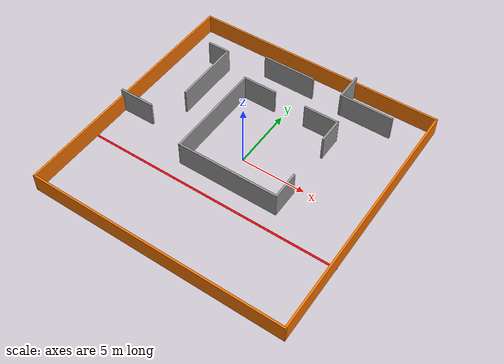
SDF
<?xml version='1.0'?>
<sdf version='1.7'>
  <model name='SAFMC_WALL_similar'>
    <pose>-0.072 -0.075 0 0 -0 0</pose>
    <link name='Wall_0'>
      <collision name='Wall_0_Collision'>
        <geometry>
          <box>
            <size>20 0.15 1.5</size>
          </box>
        </geometry>
        <pose>0 0 0.75 0 -0 0</pose>
      </collision>
      <visual name='Wall_0_Visual'>
        <pose>0 0 0.75 0 -0 0</pose>
        <geometry>
          <box>
            <size>20 0.15 1.5</size>
          </box>
        </geometry>
        <material>
          <script>
            <uri>file://media/materials/scripts/gazebo.material</uri>
            <name>Gazebo/Grey</name>
          </script>
          <ambient>0.996078 0.47451 0.0196078 1</ambient>
        </material>
        <meta>
          <layer>0</layer>
        </meta>
      </visual>
      <pose>-0.003 -9.925 0 0 -0 0</pose>
    </link>
    <link name='Wall_10'>
      <collision name='Wall_10_Collision'>
        <geometry>
          <box>
            <size>2.75 0.15 2</size>
          </box>
        </geometry>
        <pose>0 0 1 0 -0 0</pose>
      </collision>
      <visual name='Wall_10_Visual'>
        <pose>0 0 1 0 -0 0</pose>
        <geometry>
          <box>
            <size>2.75 0.15 2</size>
          </box>
        </geometry>
        <material>
          <script>
            <uri>file://media/materials/scripts/gazebo.material</uri>
            <name>Gazebo/Grey</name>
          </script>
          <ambient>0 0 0 1</ambient>
        </material>
        <meta>
          <layer>0</layer>
        </meta>
      </visual>
      <pose>-8.642 -0.751 0 0 -0 0</pose>
    </link>
    <link name='Wall_12'>
      <collision name='Wall_12_Collision'>
        <geometry>
          <box>
            <size>1.75 0.15 2</size>
          </box>
        </geometry>
        <pose>0 0 1 0 -0 0</pose>
      </collision>
      <visual name='Wall_12_Visual'>
        <pose>0 0 1 0 -0 0</pose>
        <geometry>
          <box>
            <size>1.75 0.15 2</size>
          </box>
        </geometry>
        <material>
          <script>
            <uri>file://media/materials/scripts/gazebo.material</uri>
            <name>Gazebo/Grey</name>
          </script>
          <ambient>0 0 0 1</ambient>
        </material>
        <meta>
          <layer>0</layer>
        </meta>
      </visual>
      <pose>-6.88992 6.92788 0 0 -0 0</pose>
    </link>
    <link name='Wall_13'>
      <collision name='Wall_13_Collision'>
        <geometry>
          <box>
            <size>5.40588 0.15 2</size>
          </box>
        </geometry>
        <pose>0 0 1 0 -0 0</pose>
      </collision>
      <visual name='Wall_13_Visual'>
        <pose>0 0 1 0 -0 0</pose>
        <geometry>
          <box>
            <size>5.40588 0.15 2</size>
          </box>
        </geometry>
        <material>
          <script>
            <uri>file://media/materials/scripts/gazebo.material</uri>
            <name>Gazebo/Grey</name>
          </script>
          <ambient>0 0 0 1</ambient>
        </material>
        <meta>
          <layer>0</layer>
        </meta>
      </visual>
      <pose>-6.05047 4.29994 0 0 -0 -1.5708</pose>
    </link>
    <link name='Wall_15'>
      <collision name='Wall_15_Collision'>
        <geometry>
          <box>
            <size>2.25 0.15 2</size>
          </box>
        </geometry>
        <pose>0 0 1 0 -0 0</pose>
      </collision>
      <visual name='Wall_15_Visual'>
        <pose>0 0 1 0 -0 0</pose>
        <geometry>
          <box>
            <size>2.25 0.15 2</size>
          </box>
        </geometry>
        <material>
          <script>
            <uri>file://media/materials/scripts/gazebo.material</uri>
            <name>Gazebo/Grey</name>
          </script>
          <ambient>0 0 0 1</ambient>
        </material>
        <meta>
          <layer>0</layer>
        </meta>
      </visual>
      <pose>3.3575 8.83 0 0 -0 -1.5708</pose>
    </link>
    <link name='Wall_18'>
      <collision name='Wall_18_Collision'>
        <geometry>
          <box>
            <size>4.198 0.15 2</size>
          </box>
        </geometry>
        <pose>0 0 1 0 -0 0</pose>
      </collision>
      <visual name='Wall_18_Visual'>
        <pose>0 0 1 0 -0 0</pose>
        <geometry>
          <box>
            <size>4.198 0.15 2</size>
          </box>
        </geometry>
        <material>
          <script>
            <uri>file://media/materials/scripts/gazebo.material</uri>
            <name>Gazebo/Grey</name>
          </script>
          <ambient>0 0 0 1</ambient>
        </material>
        <meta>
          <layer>0</layer>
        </meta>
      </visual>
      <pose>5.416 7.78 0 0 -0 0</pose>
    </link>
    <link name='Wall_2'>
      <collision name='Wall_2_Collision'>
        <geometry>
          <box>
            <size>20 0.15 1.5</size>
          </box>
        </geometry>
        <pose>0 0 0.75 0 -0 0</pose>
      </collision>
      <visual name='Wall_2_Visual'>
        <pose>0 0 0.75 0 -0 0</pose>
        <geometry>
          <box>
            <size>20 0.15 1.5</size>
          </box>
        </geometry>
        <material>
          <script>
            <uri>file://media/materials/scripts/gazebo.material</uri>
            <name>Gazebo/Grey</name>
          </script>
          <ambient>0.996078 0.47451 0.0196078 1</ambient>
        </material>
        <meta>
          <layer>0</layer>
        </meta>
      </visual>
      <pose>-9.928 -0 0 0 -0 1.5708</pose>
    </link>
    <link name='Wall_20'>
      <collision name='Wall_20_Collision'>
        <geometry>
          <box>
            <size>4.25 0.15 2</size>
          </box>
        </geometry>
        <pose>0 0 1 0 -0 0</pose>
      </collision>
      <visual name='Wall_20_Visual'>
        <pose>0 0 1 0 -0 0</pose>
        <geometry>
          <box>
            <size>4.25 0.15 2</size>
          </box>
        </geometry>
        <material>
          <script>
            <uri>file://media/materials/scripts/gazebo.material</uri>
            <name>Gazebo/Grey</name>
          </script>
          <ambient>0 0 0 1</ambient>
        </material>
        <meta>
          <layer>0</layer>
        </meta>
      </visual>
      <pose>-1.2353 8.03112 0 0 -0 0</pose>
    </link>
    <link name='Wall_22'>
      <collision name='Wall_22_Collision'>
        <geometry>
          <box>
            <size>8 0.15 2</size>
          </box>
        </geometry>
        <pose>0 0 1 0 -0 0</pose>
      </collision>
      <visual name='Wall_22_Visual'>
        <pose>0 0 1 0 -0 0</pose>
        <geometry>
          <box>
            <size>8 0.15 2</size>
          </box>
        </geometry>
        <material>
          <script>
            <uri>file://media/materials/scripts/gazebo.material</uri>
            <name>Gazebo/Grey</name>
          </script>
          <ambient>0 0 0 1</ambient>
        </material>
        <meta>
          <layer>0</layer>
        </meta>
      </visual>
      <pose>-3.36412 1.386 0 0 -0 -1.5708</pose>
    </link>
    <link name='Wall_24'>
      <collision name='Wall_24_Collision'>
        <geometry>
          <box>
            <size>8 0.15 2</size>
          </box>
        </geometry>
        <pose>0 0 1 0 -0 0</pose>
      </collision>
      <visual name='Wall_24_Visual'>
        <pose>0 0 1 0 -0 0</pose>
        <geometry>
          <box>
            <size>8 0.15 2</size>
          </box>
        </geometry>
        <material>
          <script>
            <uri>file://media/materials/scripts/gazebo.material</uri>
            <name>Gazebo/Grey</name>
          </script>
          <ambient>0 0 0 1</ambient>
        </material>
        <meta>
          <layer>0</layer>
        </meta>
      </visual>
      <pose>0.560883 -2.539 0 0 -0 0</pose>
    </link>
    <link name='Wall_26'>
      <collision name='Wall_26_Collision'>
        <geometry>
          <box>
            <size>2.25 0.15 2</size>
          </box>
        </geometry>
        <pose>0 0 1 0 -0 0</pose>
      </collision>
      <visual name='Wall_26_Visual'>
        <pose>0 0 1 0 -0 0</pose>
        <geometry>
          <box>
            <size>2.25 0.15 2</size>
          </box>
        </geometry>
        <material>
          <script>
            <uri>file://media/materials/scripts/gazebo.material</uri>
            <name>Gazebo/Grey</name>
          </script>
          <ambient>0 0 0 1</ambient>
        </material>
        <meta>
          <layer>0</layer>
        </meta>
      </visual>
      <pose>4.48588 -1.489 0 0 -0 1.5708</pose>
    </link>
    <link name='Wall_28'>
      <collision name='Wall_28_Collision'>
        <geometry>
          <box>
            <size>2.75 0.15 2</size>
          </box>
        </geometry>
        <pose>0 0 1 0 -0 0</pose>
      </collision>
      <visual name='Wall_28_Visual'>
        <pose>0 0 1 0 -0 0</pose>
        <geometry>
          <box>
            <size>2.75 0.15 2</size>
          </box>
        </geometry>
        <material>
          <script>
            <uri>file://media/materials/scripts/gazebo.material</uri>
            <name>Gazebo/Grey</name>
          </script>
          <ambient>0 0 0 1</ambient>
        </material>
        <meta>
          <layer>0</layer>
        </meta>
      </visual>
      <pose>-2.06412 5.311 0 0 -0 0</pose>
    </link>
    <link name='Wall_30'>
      <collision name='Wall_30_Collision'>
        <geometry>
          <box>
            <size>2.75 0.15 2</size>
          </box>
        </geometry>
        <pose>0 0 1 0 -0 0</pose>
      </collision>
      <visual name='Wall_30_Visual'>
        <pose>0 0 1 0 -0 0</pose>
        <geometry>
          <box>
            <size>2.75 0.15 2</size>
          </box>
        </geometry>
        <material>
          <script>
            <uri>file://media/materials/scripts/gazebo.material</uri>
            <name>Gazebo/Grey</name>
          </script>
          <ambient>0 0 0 1</ambient>
        </material>
        <meta>
          <layer>0</layer>
        </meta>
      </visual>
      <pose>3.16318 5.3137 0 0 -0 0</pose>
    </link>
    <link name='Wall_31'>
      <collision name='Wall_31_Collision'>
        <geometry>
          <box>
            <size>2 0.15 2</size>
          </box>
        </geometry>
        <pose>0 0 1 0 -0 0</pose>
      </collision>
      <visual name='Wall_31_Visual'>
        <pose>0 0 1 0 -0 0</pose>
        <geometry>
          <box>
            <size>2 0.15 2</size>
          </box>
        </geometry>
        <material>
          <script>
            <uri>file://media/materials/scripts/gazebo.material</uri>
            <name>Gazebo/Grey</name>
          </script>
          <ambient>0 0 0 1</ambient>
        </material>
        <meta>
          <layer>0</layer>
        </meta>
      </visual>
      <pose>4.46318 4.3624 0 0 -0 -1.5708</pose>
    </link>
    <link name='Wall_4'>
      <collision name='Wall_4_Collision'>
        <geometry>
          <box>
            <size>20 0.15 1.5</size>
          </box>
        </geometry>
        <pose>0 0 0.75 0 -0 0</pose>
      </collision>
      <visual name='Wall_4_Visual'>
        <pose>0 0 0.75 0 -0 0</pose>
        <geometry>
          <box>
            <size>20 0.15 1.5</size>
          </box>
        </geometry>
        <material>
          <script>
            <uri>file://media/materials/scripts/gazebo.material</uri>
            <name>Gazebo/Grey</name>
          </script>
          <ambient>0.996078 0.47451 0.0196078 1</ambient>
        </material>
        <meta>
          <layer>0</layer>
        </meta>
      </visual>
      <pose>-0.003 9.925 0 0 -0 0</pose>
    </link>
    <link name='Wall_6'>
      <collision name='Wall_6_Collision'>
        <geometry>
          <box>
            <size>20 0.15 1.5</size>
          </box>
        </geometry>
        <pose>0 0 0.75 0 -0 0</pose>
      </collision>
      <visual name='Wall_6_Visual'>
        <pose>0 0 0.75 0 -0 0</pose>
        <geometry>
          <box>
            <size>20 0.15 1.5</size>
          </box>
        </geometry>
        <material>
          <script>
            <uri>file://media/materials/scripts/gazebo.material</uri>
            <name>Gazebo/Grey</name>
          </script>
          <ambient>0.996078 0.47451 0.0196078 1</ambient>
        </material>
        <meta>
          <layer>0</layer>
        </meta>
      </visual>
      <pose>9.922 -0 0 0 -0 -1.5708</pose>
    </link>
    <link name='Wall_8'>
      <collision name='Wall_8_Collision'>
        <geometry>
          <box>
            <size>20 0.15 0.01</size>
          </box>
        </geometry>
        <pose>0 0 0.005 0 -0 0</pose>
      </collision>
      <visual name='Wall_8_Visual'>
        <pose>0 0 0.005 0 -0 0</pose>
        <geometry>
          <box>
            <size>20 0.15 0.01</size>
          </box>
        </geometry>
        <material>
          <script>
            <uri>file://media/materials/scripts/gazebo.material</uri>
            <name>Gazebo/Grey</name>
          </script>
          <ambient>1 0 0 1</ambient>
        </material>
        <meta>
          <layer>0</layer>
        </meta>
      </visual>
      <pose>0.017 -3.925 0 0 -0 0</pose>
    </link>
    <static>1</static>
  </model>
</sdf>
